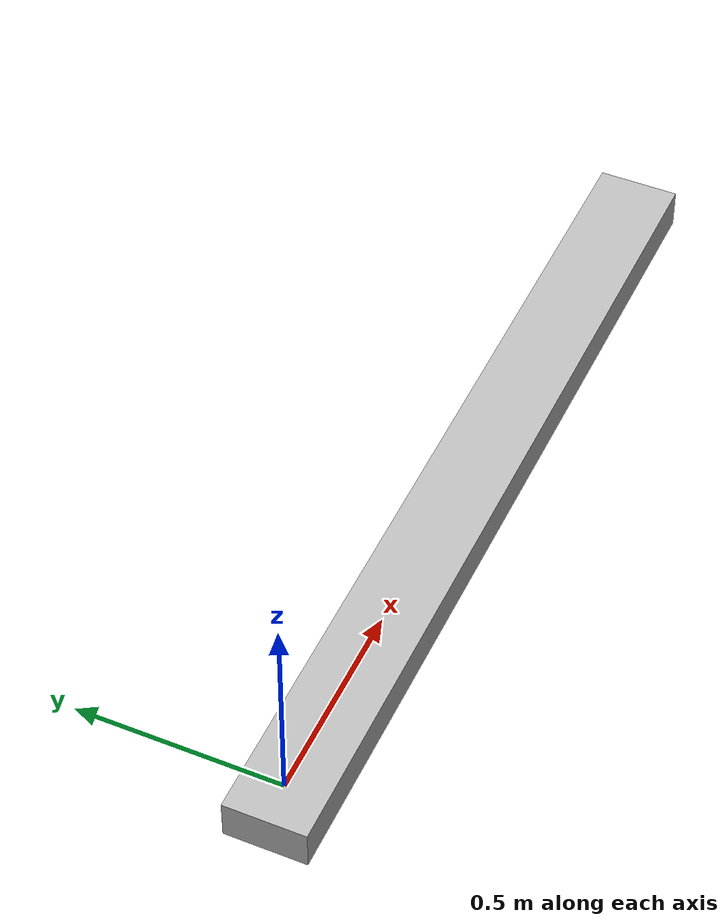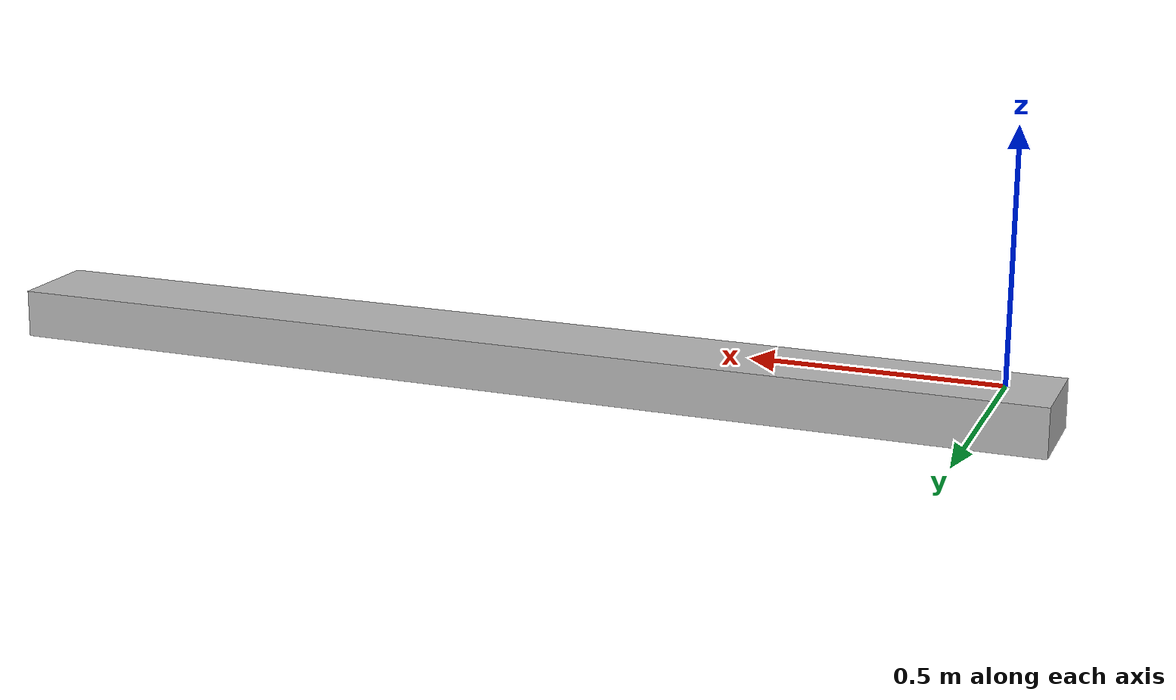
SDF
<?xml version="1.0" ?>
<sdf version="1.5">
  <model name="auv_sensor">

  <link name="sen_front">
<!-- Add a ray sensor, and give it a name -->

	<sensor type="ray" name="sensor_front">

	  <pose>1 0 -0.01 0 1.5707 0</pose>

	  <!-- Enable visualization to see the rays in the GUI -->
	  <visualize>true</visualize>

	  <!-- Set the update rate of the sensor -->
	  <update_rate>30</update_rate>
	<ray>

	<noise>
      <!-- Use gaussian noise -->
      <type>gaussian</type>
      <mean>0.0</mean>
      <stddev>0.02</stddev>
    </noise>

  <!-- The scan element contains the horizontal and vertical beams.
       We are leaving out the vertical beams for this tutorial. -->
  <scan>

    <!-- The horizontal beams -->
    <horizontal>
      <!-- The velodyne has 'n' number of beams(samples) -->
      <samples>7</samples>

      <resolution>1</resolution>

      <!-- Minimum angle in radians -->
      <min_angle>-0.523599</min_angle>

      <!-- Maximum angle in radians -->
      <max_angle>0.523599</max_angle>
    </horizontal>
  </scan>

  <!-- Range defines characteristics of an individual beam -->
  <range>

    <!-- Minimum distance of the beam -->
    <min>0.05</min>

    <!-- Maximum distance of the beam -->
    <max>70</max>

    <!-- Linear resolution of the beam -->
    <resolution>0.02</resolution>
  </range>
</ray>
</sensor>

	<sensor type="ray" name="sensor_mid">

	  <pose>0 0 -0.01 0 1.5707 0</pose>

	  <!-- Enable visualization to see the rays in the GUI -->
	  <visualize>true</visualize>

	  <!-- Set the update rate of the sensor -->
	  <update_rate>30</update_rate>
	<ray>

	<noise>
      <!-- Use gaussian noise -->
      <type>gaussian</type>
      <mean>0.0</mean>
      <stddev>0.02</stddev>
    </noise>

  <!-- The scan element contains the horizontal and vertical beams.
       We are leaving out the vertical beams for this tutorial. -->
  <scan>

    <!-- The horizontal beams -->
    <horizontal>
      <!-- The velodyne has 'n' number of beams(samples) -->
      <samples>7</samples>

      <resolution>1</resolution>

      <!-- Minimum angle in radians -->
      <min_angle>-0.523599</min_angle>

      <!-- Maximum angle in radians -->
      <max_angle>0.523599</max_angle>
    </horizontal>
  </scan>

  <!-- Range defines characteristics of an individual beam -->
  <range>

    <!-- Minimum distance of the beam -->
    <min>0.05</min>

    <!-- Maximum distance of the beam -->
    <max>70</max>

    <!-- Linear resolution of the beam -->
    <resolution>0.02</resolution>
  </range>
</ray>
</sensor>

	<sensor type="ray" name="sensor_back">

	  <pose>-1 0 -0.01 0 1.5707 0</pose>

	  <!-- Enable visualization to see the rays in the GUI -->
	  <visualize>true</visualize>

	  <!-- Set the update rate of the sensor -->
	  <update_rate>30</update_rate>
	<ray>

	<noise>
      <!-- Use gaussian noise -->
      <type>gaussian</type>
      <mean>0.0</mean>
      <stddev>0.02</stddev>
    </noise>

  <!-- The scan element contains the horizontal and vertical beams.
       We are leaving out the vertical beams for this tutorial. -->
  <scan>

    <!-- The horizontal beams -->
    <horizontal>
      <!-- The velodyne has 'n' number of beams(samples) -->
      <samples>7</samples>

      <resolution>1</resolution>

      <!-- Minimum angle in radians -->
      <min_angle>-0.523599</min_angle>

      <!-- Maximum angle in radians -->
      <max_angle>0.523599</max_angle>
    </horizontal>
  </scan>

  <!-- Range defines characteristics of an individual beam -->
  <range>

    <!-- Minimum distance of the beam -->
    <min>0.05</min>

    <!-- Maximum distance of the beam -->
    <max>70</max>

    <!-- Linear resolution of the beam -->
    <resolution>0.02</resolution>
  </range>
</ray>
</sensor>

    <!-- Vertically offset the top cylinder by the length of the bottom
        cylinder and half the length of this cylinder. -->
    <pose>1 0 -0.05 0 0 0</pose>
	<inertial>
	     <mass>0.1</mass>
	     <inertia>
	       <ixx>0.0001</ixx>
	       <iyy>0.0001</iyy>
	       <izz>0.0001</izz>
	       <ixy>0</ixy>
	       <ixz>0</ixz>
	       <iyz>0</iyz>
	     </inertia>
   </inertial>

    <collision name="sen_front_collision">
      <geometry>
        <box>
          <!-- Radius and length provided by Velodyne -->
          <size> 2.2 0.2 0.1 </size>
	</box>
      </geometry>
    </collision>

    <!-- The visual is mostly a copy of the collision -->
    <visual name="sen_front_visual">
      <geometry>
        <box>
          <!-- Radius and length provided by Velodyne -->
          <size> 2.2 0.2 0.1 </size>
	</box>
      </geometry>
    </visual>
  </link>

</model>
</sdf>
